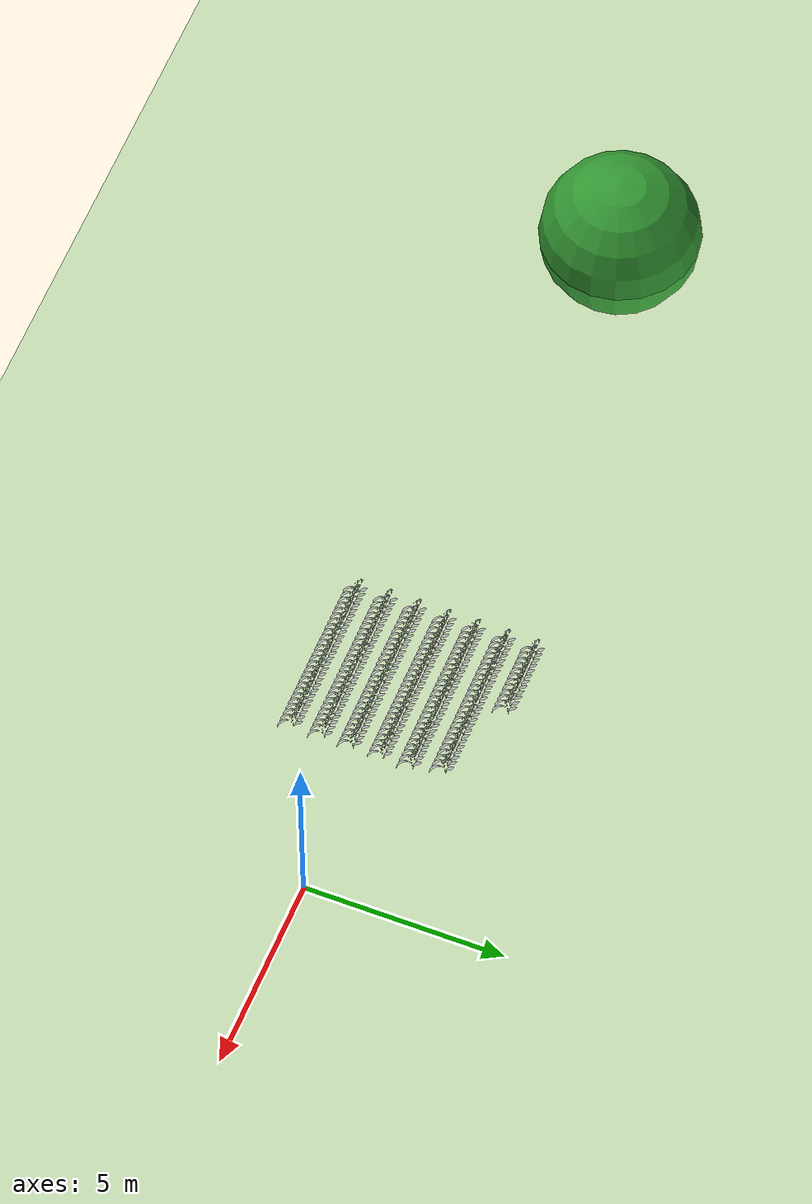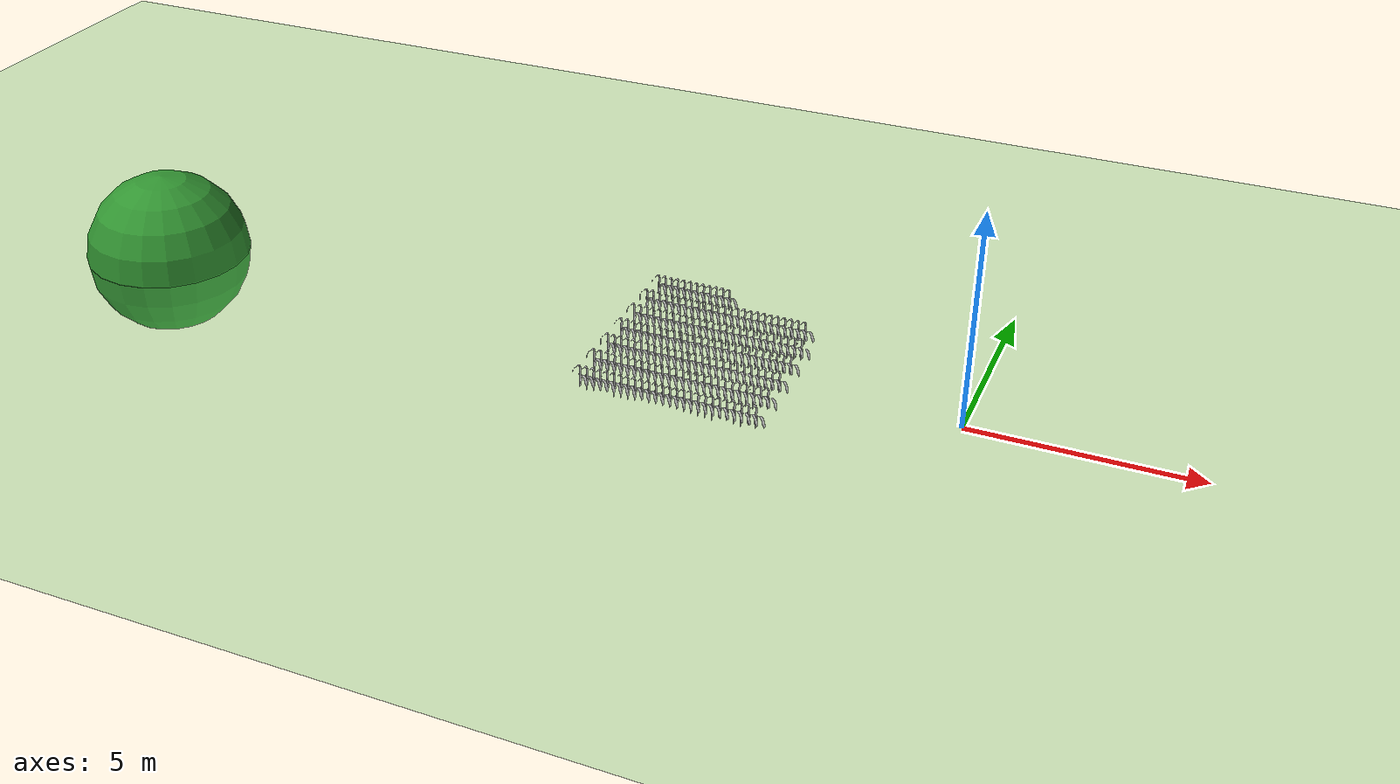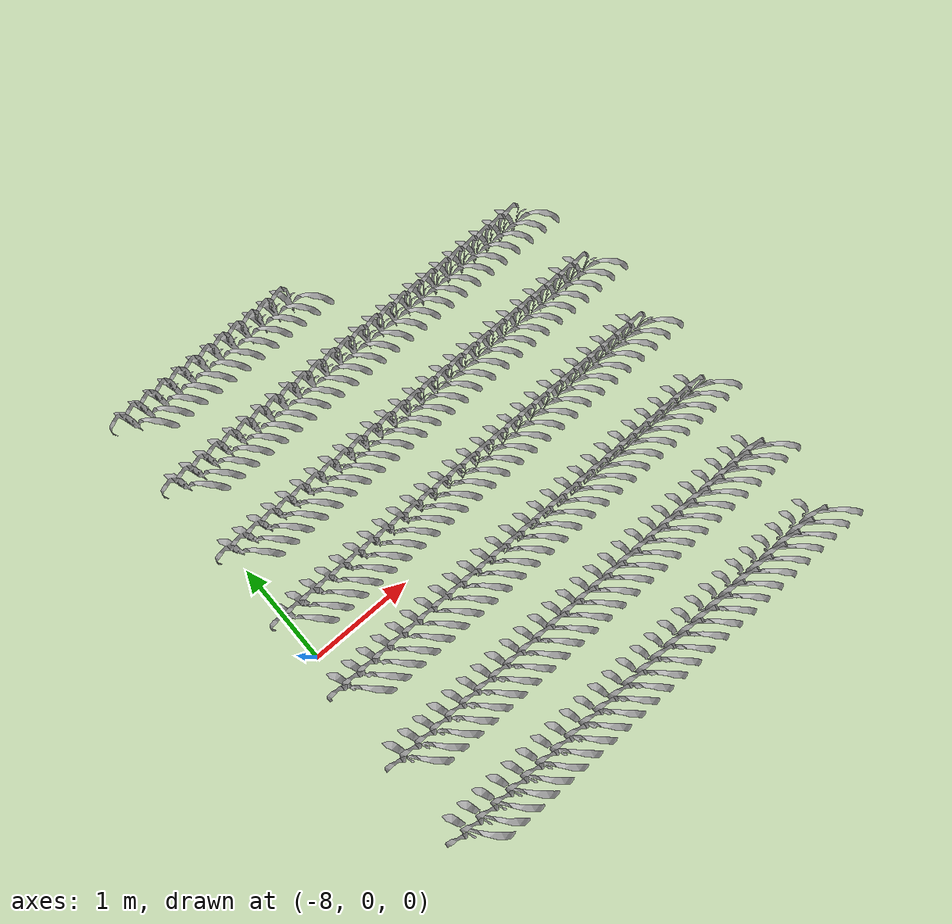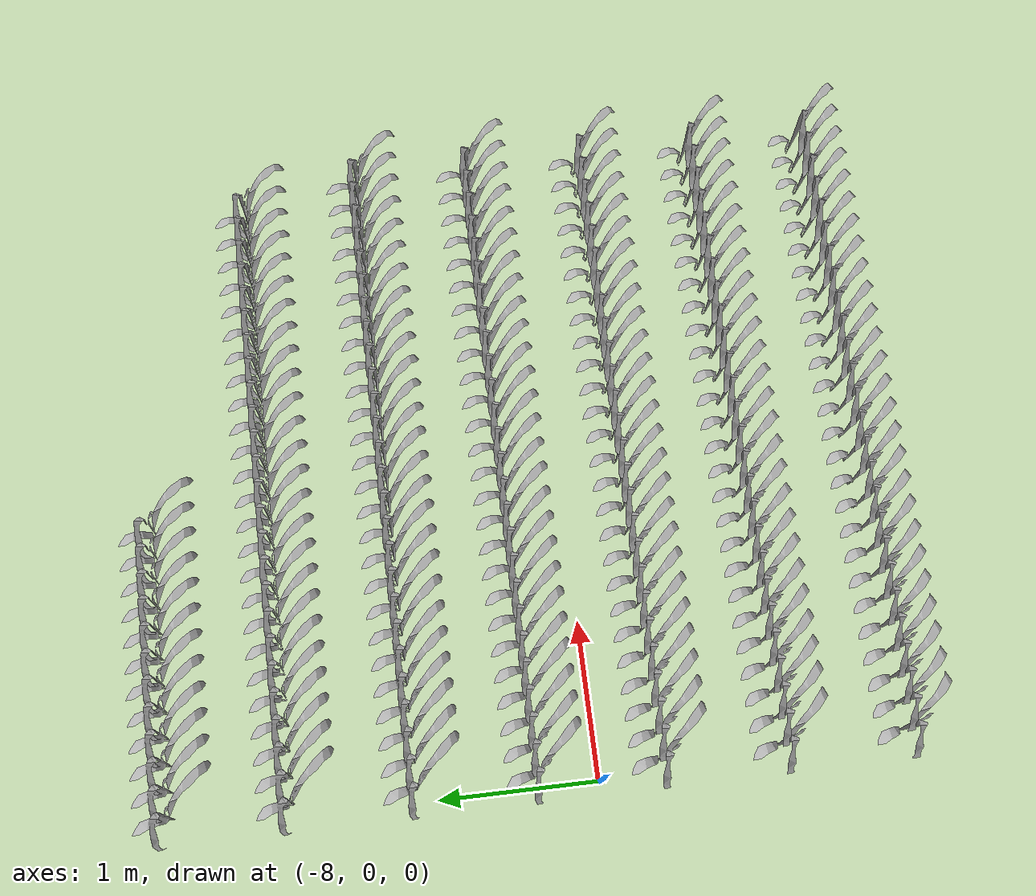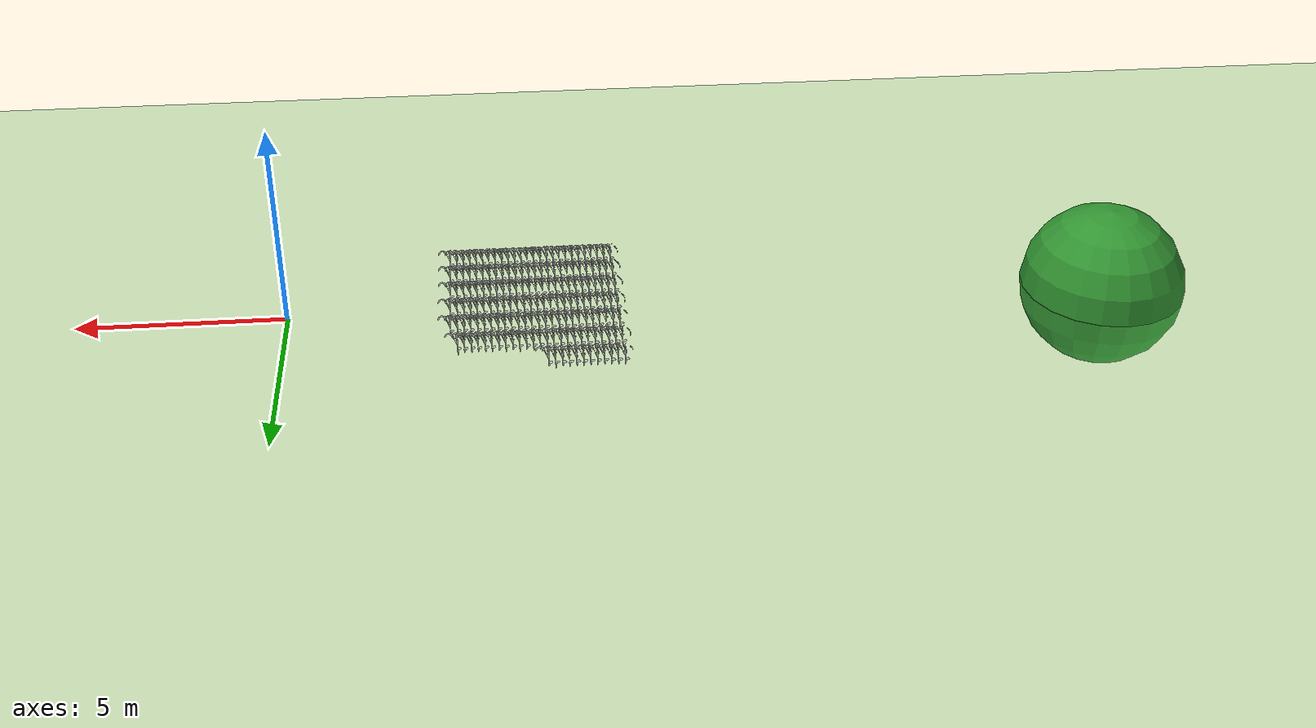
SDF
<sdf version="1.9">
 <world name="farm_world">
  <model name="ground_plane">
   <static>true</static>
   <link name="link">
    <collision name="collision">
     <geometry><plane><normal>0 0 1</normal><size>100 100</size></plane></geometry>
    </collision>
    <visual name="visual">
     <geometry><plane><normal>0 0 1</normal><size>100 100</size></plane></geometry>
     <material>
      <ambient>0.2 0.6 0.2 1</ambient>
      <diffuse>0.3 0.7 0.3 1</diffuse>
      <specular>0.1 0.1 0.1 1</specular>
     </material>
    </visual>
   </link>
  </model>
  <include><uri>model://maize_01</uri><name>maize_700</name><pose>-7.92 -1.88 0 0 0 0</pose></include>
  <include><uri>model://maize_01</uri><name>maize_701</name><pose>-7.76 -1.88 0 0 0 0</pose></include>
  <include><uri>model://maize_01</uri><name>maize_702</name><pose>-7.60 -1.88 0 0 0 0</pose></include>
  <include><uri>model://maize_01</uri><name>maize_703</name><pose>-7.44 -1.88 0 0 0 0</pose></include>
  <include><uri>model://maize_01</uri><name>maize_704</name><pose>-7.28 -1.88 0 0 0 0</pose></include>
  <include><uri>model://maize_01</uri><name>maize_705</name><pose>-7.12 -1.88 0 0 0 0</pose></include>
  <include><uri>model://maize_01</uri><name>maize_706</name><pose>-6.96 -1.88 0 0 0 0</pose></include>
  <include><uri>model://maize_01</uri><name>maize_707</name><pose>-6.80 -1.88 0 0 0 0</pose></include>
  <include><uri>model://maize_01</uri><name>maize_708</name><pose>-6.64 -1.88 0 0 0 0</pose></include>
  <include><uri>model://maize_01</uri><name>maize_709</name><pose>-6.48 -1.88 0 0 0 0</pose></include>
  <include><uri>model://maize_01</uri><name>maize_710</name><pose>-6.32 -1.88 0 0 0 0</pose></include>
  <include><uri>model://maize_01</uri><name>maize_711</name><pose>-6.16 -1.88 0 0 0 0</pose></include>
  <include><uri>model://maize_01</uri><name>maize_712</name><pose>-6.00 -1.88 0 0 0 0</pose></include>
  <include><uri>model://maize_01</uri><name>maize_713</name><pose>-5.84 -1.88 0 0 0 0</pose></include>
  <include><uri>model://maize_01</uri><name>maize_714</name><pose>-5.68 -1.88 0 0 0 0</pose></include>
  <include><uri>model://maize_01</uri><name>maize_715</name><pose>-5.52 -1.88 0 0 0 0</pose></include>
  <include><uri>model://maize_01</uri><name>maize_716</name><pose>-5.36 -1.88 0 0 0 0</pose></include>
  <include><uri>model://maize_01</uri><name>maize_717</name><pose>-5.20 -1.88 0 0 0 0</pose></include>
  <include><uri>model://maize_01</uri><name>maize_718</name><pose>-5.04 -1.88 0 0 0 0</pose></include>
  <include><uri>model://maize_01</uri><name>maize_719</name><pose>-4.88 -1.88 0 0 0 0</pose></include>
  <include><uri>model://maize_01</uri><name>maize_720</name><pose>-4.72 -1.88 0 0 0 0</pose></include>
  <include><uri>model://maize_01</uri><name>maize_721</name><pose>-4.56 -1.88 0 0 0 0</pose></include>
  <include><uri>model://maize_01</uri><name>maize_722</name><pose>-4.40 -1.88 0 0 0 0</pose></include>
  <include><uri>model://maize_01</uri><name>maize_723</name><pose>-4.24 -1.88 0 0 0 0</pose></include>
  <include><uri>model://maize_01</uri><name>maize_724</name><pose>-4.08 -1.88 0 0 0 0</pose></include>
  <include><uri>model://maize_01</uri><name>maize_725</name><pose>-3.92 -1.88 0 0 0 0</pose></include>
  <include><uri>model://maize_01</uri><name>maize_800</name><pose>-7.92 -1.12 0 0 0 0</pose></include>
  <include><uri>model://maize_01</uri><name>maize_801</name><pose>-7.76 -1.12 0 0 0 0</pose></include>
  <include><uri>model://maize_01</uri><name>maize_802</name><pose>-7.60 -1.12 0 0 0 0</pose></include>
  <include><uri>model://maize_01</uri><name>maize_803</name><pose>-7.44 -1.12 0 0 0 0</pose></include>
  <include><uri>model://maize_01</uri><name>maize_804</name><pose>-7.28 -1.12 0 0 0 0</pose></include>
  <include><uri>model://maize_01</uri><name>maize_805</name><pose>-7.12 -1.12 0 0 0 0</pose></include>
  <include><uri>model://maize_01</uri><name>maize_806</name><pose>-6.96 -1.12 0 0 0 0</pose></include>
  <include><uri>model://maize_01</uri><name>maize_807</name><pose>-6.80 -1.12 0 0 0 0</pose></include>
  <include><uri>model://maize_01</uri><name>maize_808</name><pose>-6.64 -1.12 0 0 0 0</pose></include>
  <include><uri>model://maize_01</uri><name>maize_809</name><pose>-6.48 -1.12 0 0 0 0</pose></include>
  <include><uri>model://maize_01</uri><name>maize_810</name><pose>-6.32 -1.12 0 0 0 0</pose></include>
  <include><uri>model://maize_01</uri><name>maize_811</name><pose>-6.16 -1.12 0 0 0 0</pose></include>
  <include><uri>model://maize_01</uri><name>maize_812</name><pose>-6.00 -1.12 0 0 0 0</pose></include>
  <include><uri>model://maize_01</uri><name>maize_813</name><pose>-5.84 -1.12 0 0 0 0</pose></include>
  <include><uri>model://maize_01</uri><name>maize_814</name><pose>-5.68 -1.12 0 0 0 0</pose></include>
  <include><uri>model://maize_01</uri><name>maize_815</name><pose>-5.52 -1.12 0 0 0 0</pose></include>
  <include><uri>model://maize_01</uri><name>maize_816</name><pose>-5.36 -1.12 0 0 0 0</pose></include>
  <include><uri>model://maize_01</uri><name>maize_817</name><pose>-5.20 -1.12 0 0 0 0</pose></include>
  <include><uri>model://maize_01</uri><name>maize_818</name><pose>-5.04 -1.12 0 0 0 0</pose></include>
  <include><uri>model://maize_01</uri><name>maize_819</name><pose>-4.88 -1.12 0 0 0 0</pose></include>
  <include><uri>model://maize_01</uri><name>maize_820</name><pose>-4.72 -1.12 0 0 0 0</pose></include>
  <include><uri>model://maize_01</uri><name>maize_821</name><pose>-4.56 -1.12 0 0 0 0</pose></include>
  <include><uri>model://maize_01</uri><name>maize_822</name><pose>-4.40 -1.12 0 0 0 0</pose></include>
  <include><uri>model://maize_01</uri><name>maize_823</name><pose>-4.24 -1.12 0 0 0 0</pose></include>
  <include><uri>model://maize_01</uri><name>maize_824</name><pose>-4.08 -1.12 0 0 0 0</pose></include>
  <include><uri>model://maize_01</uri><name>maize_825</name><pose>-3.92 -1.12 0 0 0 0</pose></include>
  <include><uri>model://maize_01</uri><name>maize_900</name><pose>-7.92 -0.38 0 0 0 0</pose></include>
  <include><uri>model://maize_01</uri><name>maize_901</name><pose>-7.76 -0.38 0 0 0 0</pose></include>
  <include><uri>model://maize_01</uri><name>maize_902</name><pose>-7.60 -0.38 0 0 0 0</pose></include>
  <include><uri>model://maize_01</uri><name>maize_903</name><pose>-7.44 -0.38 0 0 0 0</pose></include>
  <include><uri>model://maize_01</uri><name>maize_904</name><pose>-7.28 -0.38 0 0 0 0</pose></include>
  <include><uri>model://maize_01</uri><name>maize_905</name><pose>-7.12 -0.38 0 0 0 0</pose></include>
  <include><uri>model://maize_01</uri><name>maize_906</name><pose>-6.96 -0.38 0 0 0 0</pose></include>
  <include><uri>model://maize_01</uri><name>maize_907</name><pose>-6.80 -0.38 0 0 0 0</pose></include>
  <include><uri>model://maize_01</uri><name>maize_908</name><pose>-6.64 -0.38 0 0 0 0</pose></include>
  <include><uri>model://maize_01</uri><name>maize_909</name><pose>-6.48 -0.38 0 0 0 0</pose></include>
  <include><uri>model://maize_01</uri><name>maize_910</name><pose>-6.32 -0.38 0 0 0 0</pose></include>
  <include><uri>model://maize_01</uri><name>maize_911</name><pose>-6.16 -0.38 0 0 0 0</pose></include>
  <include><uri>model://maize_01</uri><name>maize_912</name><pose>-6.00 -0.38 0 0 0 0</pose></include>
  <include><uri>model://maize_01</uri><name>maize_913</name><pose>-5.84 -0.38 0 0 0 0</pose></include>
  <include><uri>model://maize_01</uri><name>maize_914</name><pose>-5.68 -0.38 0 0 0 0</pose></include>
  <include><uri>model://maize_01</uri><name>maize_915</name><pose>-5.52 -0.38 0 0 0 0</pose></include>
  <include><uri>model://maize_01</uri><name>maize_916</name><pose>-5.36 -0.38 0 0 0 0</pose></include>
  <include><uri>model://maize_01</uri><name>maize_917</name><pose>-5.20 -0.38 0 0 0 0</pose></include>
  <include><uri>model://maize_01</uri><name>maize_918</name><pose>-5.04 -0.38 0 0 0 0</pose></include>
  <include><uri>model://maize_01</uri><name>maize_919</name><pose>-4.88 -0.38 0 0 0 0</pose></include>
  <include><uri>model://maize_01</uri><name>maize_920</name><pose>-4.72 -0.38 0 0 0 0</pose></include>
  <include><uri>model://maize_01</uri><name>maize_921</name><pose>-4.56 -0.38 0 0 0 0</pose></include>
  <include><uri>model://maize_01</uri><name>maize_922</name><pose>-4.40 -0.38 0 0 0 0</pose></include>
  <include><uri>model://maize_01</uri><name>maize_923</name><pose>-4.24 -0.38 0 0 0 0</pose></include>
  <include><uri>model://maize_01</uri><name>maize_924</name><pose>-4.08 -0.38 0 0 0 0</pose></include>
  <include><uri>model://maize_01</uri><name>maize_925</name><pose>-3.92 -0.38 0 0 0 0</pose></include>
  <include><uri>model://maize_01</uri><name>maize_1000</name><pose>-7.92 0.38 0 0 0 0</pose></include>
  <include><uri>model://maize_01</uri><name>maize_1001</name><pose>-7.76 0.38 0 0 0 0</pose></include>
  <include><uri>model://maize_01</uri><name>maize_1002</name><pose>-7.60 0.38 0 0 0 0</pose></include>
  <include><uri>model://maize_01</uri><name>maize_1003</name><pose>-7.44 0.38 0 0 0 0</pose></include>
  <include><uri>model://maize_01</uri><name>maize_1004</name><pose>-7.28 0.38 0 0 0 0</pose></include>
  <include><uri>model://maize_01</uri><name>maize_1005</name><pose>-7.12 0.38 0 0 0 0</pose></include>
  <include><uri>model://maize_01</uri><name>maize_1006</name><pose>-6.96 0.38 0 0 0 0</pose></include>
  <include><uri>model://maize_01</uri><name>maize_1007</name><pose>-6.80 0.38 0 0 0 0</pose></include>
  <include><uri>model://maize_01</uri><name>maize_1008</name><pose>-6.64 0.38 0 0 0 0</pose></include>
  <include><uri>model://maize_01</uri><name>maize_1009</name><pose>-6.48 0.38 0 0 0 0</pose></include>
  <include><uri>model://maize_01</uri><name>maize_1010</name><pose>-6.32 0.38 0 0 0 0</pose></include>
  <include><uri>model://maize_01</uri><name>maize_1011</name><pose>-6.16 0.38 0 0 0 0</pose></include>
  <include><uri>model://maize_01</uri><name>maize_1012</name><pose>-6.00 0.38 0 0 0 0</pose></include>
  <include><uri>model://maize_01</uri><name>maize_1013</name><pose>-5.84 0.38 0 0 0 0</pose></include>
  <include><uri>model://maize_01</uri><name>maize_1014</name><pose>-5.68 0.38 0 0 0 0</pose></include>
  <include><uri>model://maize_01</uri><name>maize_1015</name><pose>-5.52 0.38 0 0 0 0</pose></include>
  <include><uri>model://maize_01</uri><name>maize_1016</name><pose>-5.36 0.38 0 0 0 0</pose></include>
  <include><uri>model://maize_01</uri><name>maize_1017</name><pose>-5.20 0.38 0 0 0 0</pose></include>
  <include><uri>model://maize_01</uri><name>maize_1018</name><pose>-5.04 0.38 0 0 0 0</pose></include>
  <include><uri>model://maize_01</uri><name>maize_1019</name><pose>-4.88 0.38 0 0 0 0</pose></include>
  <include><uri>model://maize_01</uri><name>maize_1020</name><pose>-4.72 0.38 0 0 0 0</pose></include>
  <include><uri>model://maize_01</uri><name>maize_1021</name><pose>-4.56 0.38 0 0 0 0</pose></include>
  <include><uri>model://maize_01</uri><name>maize_1022</name><pose>-4.40 0.38 0 0 0 0</pose></include>
  <include><uri>model://maize_01</uri><name>maize_1023</name><pose>-4.24 0.38 0 0 0 0</pose></include>
  <include><uri>model://maize_01</uri><name>maize_1024</name><pose>-4.08 0.38 0 0 0 0</pose></include>
  <include><uri>model://maize_01</uri><name>maize_1025</name><pose>-3.92 0.38 0 0 0 0</pose></include>
  <include><uri>model://maize_01</uri><name>maize_1100</name><pose>-7.92 1.12 0 0 0 0</pose></include>
  <include><uri>model://maize_01</uri><name>maize_1101</name><pose>-7.76 1.12 0 0 0 0</pose></include>
  <include><uri>model://maize_01</uri><name>maize_1102</name><pose>-7.60 1.12 0 0 0 0</pose></include>
  <include><uri>model://maize_01</uri><name>maize_1103</name><pose>-7.44 1.12 0 0 0 0</pose></include>
  <include><uri>model://maize_01</uri><name>maize_1104</name><pose>-7.28 1.12 0 0 0 0</pose></include>
  <include><uri>model://maize_01</uri><name>maize_1105</name><pose>-7.12 1.12 0 0 0 0</pose></include>
  <include><uri>model://maize_01</uri><name>maize_1106</name><pose>-6.96 1.12 0 0 0 0</pose></include>
  <include><uri>model://maize_01</uri><name>maize_1107</name><pose>-6.80 1.12 0 0 0 0</pose></include>
  <include><uri>model://maize_01</uri><name>maize_1108</name><pose>-6.64 1.12 0 0 0 0</pose></include>
  <include><uri>model://maize_01</uri><name>maize_1109</name><pose>-6.48 1.12 0 0 0 0</pose></include>
  <include><uri>model://maize_01</uri><name>maize_1110</name><pose>-6.32 1.12 0 0 0 0</pose></include>
  <include><uri>model://maize_01</uri><name>maize_1111</name><pose>-6.16 1.12 0 0 0 0</pose></include>
  <include><uri>model://maize_01</uri><name>maize_1112</name><pose>-6.00 1.12 0 0 0 0</pose></include>
  <include><uri>model://maize_01</uri><name>maize_1113</name><pose>-5.84 1.12 0 0 0 0</pose></include>
  <include><uri>model://maize_01</uri><name>maize_1114</name><pose>-5.68 1.12 0 0 0 0</pose></include>
  <include><uri>model://maize_01</uri><name>maize_1115</name><pose>-5.52 1.12 0 0 0 0</pose></include>
  <include><uri>model://maize_01</uri><name>maize_1116</name><pose>-5.36 1.12 0 0 0 0</pose></include>
  <include><uri>model://maize_01</uri><name>maize_1117</name><pose>-5.20 1.12 0 0 0 0</pose></include>
  <include><uri>model://maize_01</uri><name>maize_1118</name><pose>-5.04 1.12 0 0 0 0</pose></include>
  <include><uri>model://maize_01</uri><name>maize_1119</name><pose>-4.88 1.12 0 0 0 0</pose></include>
  <include><uri>model://maize_01</uri><name>maize_1120</name><pose>-4.72 1.12 0 0 0 0</pose></include>
  <include><uri>model://maize_01</uri><name>maize_1121</name><pose>-4.56 1.12 0 0 0 0</pose></include>
  <include><uri>model://maize_01</uri><name>maize_1122</name><pose>-4.40 1.12 0 0 0 0</pose></include>
  <include><uri>model://maize_01</uri><name>maize_1123</name><pose>-4.24 1.12 0 0 0 0</pose></include>
  <include><uri>model://maize_01</uri><name>maize_1124</name><pose>-4.08 1.12 0 0 0 0</pose></include>
  <include><uri>model://maize_01</uri><name>maize_1125</name><pose>-3.92 1.12 0 0 0 0</pose></include>
  <include><uri>model://maize_01</uri><name>maize_1200</name><pose>-7.92 1.88 0 0 0 0</pose></include>
  <include><uri>model://maize_01</uri><name>maize_1201</name><pose>-7.76 1.88 0 0 0 0</pose></include>
  <include><uri>model://maize_01</uri><name>maize_1202</name><pose>-7.60 1.88 0 0 0 0</pose></include>
  <include><uri>model://maize_01</uri><name>maize_1203</name><pose>-7.44 1.88 0 0 0 0</pose></include>
  <include><uri>model://maize_01</uri><name>maize_1204</name><pose>-7.28 1.88 0 0 0 0</pose></include>
  <include><uri>model://maize_01</uri><name>maize_1205</name><pose>-7.12 1.88 0 0 0 0</pose></include>
  <include><uri>model://maize_01</uri><name>maize_1206</name><pose>-6.96 1.88 0 0 0 0</pose></include>
  <include><uri>model://maize_01</uri><name>maize_1207</name><pose>-6.80 1.88 0 0 0 0</pose></include>
  <include><uri>model://maize_01</uri><name>maize_1208</name><pose>-6.64 1.88 0 0 0 0</pose></include>
  <include><uri>model://maize_01</uri><name>maize_1209</name><pose>-6.48 1.88 0 0 0 0</pose></include>
  <include><uri>model://maize_01</uri><name>maize_1210</name><pose>-6.32 1.88 0 0 0 0</pose></include>
  <include><uri>model://maize_01</uri><name>maize_1211</name><pose>-6.16 1.88 0 0 0 0</pose></include>
  <include><uri>model://maize_01</uri><name>maize_1212</name><pose>-6.00 1.88 0 0 0 0</pose></include>
  <include><uri>model://maize_01</uri><name>maize_1213</name><pose>-5.84 1.88 0 0 0 0</pose></include>
  <include><uri>model://maize_01</uri><name>maize_1214</name><pose>-5.68 1.88 0 0 0 0</pose></include>
  <include><uri>model://maize_01</uri><name>maize_1215</name><pose>-5.52 1.88 0 0 0 0</pose></include>
  <include><uri>model://maize_01</uri><name>maize_1216</name><pose>-5.36 1.88 0 0 0 0</pose></include>
  <include><uri>model://maize_01</uri><name>maize_1217</name><pose>-5.20 1.88 0 0 0 0</pose></include>
  <include><uri>model://maize_01</uri><name>maize_1218</name><pose>-5.04 1.88 0 0 0 0</pose></include>
  <include><uri>model://maize_01</uri><name>maize_1219</name><pose>-4.88 1.88 0 0 0 0</pose></include>
  <include><uri>model://maize_01</uri><name>maize_1220</name><pose>-4.72 1.88 0 0 0 0</pose></include>
  <include><uri>model://maize_01</uri><name>maize_1221</name><pose>-4.56 1.88 0 0 0 0</pose></include>
  <include><uri>model://maize_01</uri><name>maize_1222</name><pose>-4.40 1.88 0 0 0 0</pose></include>
  <include><uri>model://maize_01</uri><name>maize_1223</name><pose>-4.24 1.88 0 0 0 0</pose></include>
  <include><uri>model://maize_01</uri><name>maize_1224</name><pose>-4.08 1.88 0 0 0 0</pose></include>
  <include><uri>model://maize_01</uri><name>maize_1300</name><pose>-7.92 2.62 0 0 0 0</pose></include>
  <include><uri>model://maize_01</uri><name>maize_1301</name><pose>-7.76 2.62 0 0 0 0</pose></include>
  <include><uri>model://maize_01</uri><name>maize_1302</name><pose>-7.60 2.62 0 0 0 0</pose></include>
  <include><uri>model://maize_01</uri><name>maize_1303</name><pose>-7.44 2.62 0 0 0 0</pose></include>
  <include><uri>model://maize_01</uri><name>maize_1304</name><pose>-7.28 2.62 0 0 0 0</pose></include>
  <include><uri>model://maize_01</uri><name>maize_1305</name><pose>-7.12 2.62 0 0 0 0</pose></include>
  <include><uri>model://maize_01</uri><name>maize_1306</name><pose>-6.96 2.62 0 0 0 0</pose></include>
  <include><uri>model://maize_01</uri><name>maize_1307</name><pose>-6.80 2.62 0 0 0 0</pose></include>
  <include><uri>model://maize_01</uri><name>maize_1308</name><pose>-6.64 2.62 0 0 0 0</pose></include>
  <include><uri>model://maize_01</uri><name>maize_1309</name><pose>-6.48 2.62 0 0 0 0</pose></include>
  <include><uri>model://maize_01</uri><name>maize_1310</name><pose>-6.32 2.62 0 0 0 0</pose></include>
  <include><uri>model://maize_01</uri><name>maize_1311</name><pose>-6.16 2.62 0 0 0 0</pose></include>
  <include><uri>model://big_tree</uri><name>tree_6</name><pose>-20 0 0 0 0 0</pose></include>
 </world>
</sdf>
